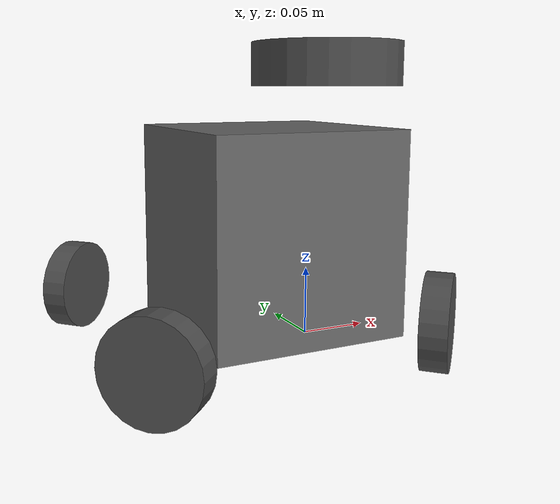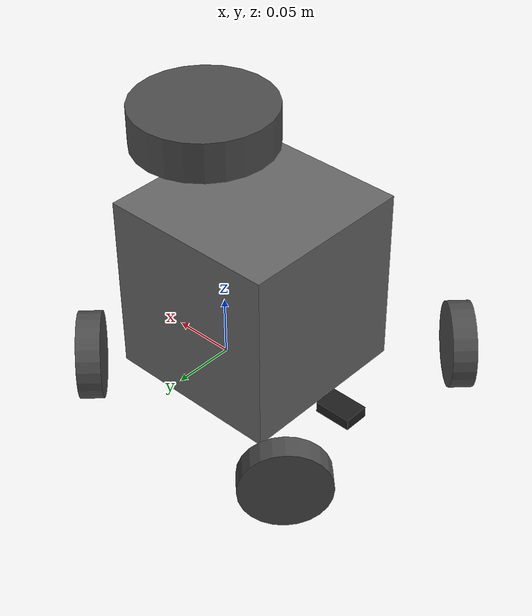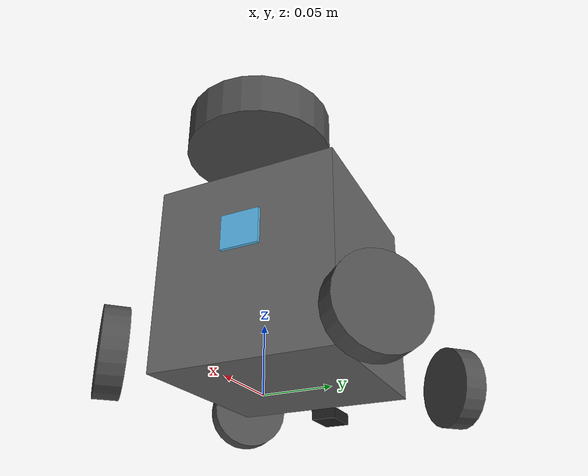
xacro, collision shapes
<?xml version="1.0" ?>
<robot name="transbot_normal" xmlns:xacro="http://ros.org/wiki/xacro">
  <xacro:include filename="$(find transbot_description)/urdf/common_properties.xacro"/>
  <xacro:include filename="$(find transbot_description)/urdf/transbot_normal.gazebo.xacro"/>

  <link name="base_footprint"/>

  <joint name="base_joint" type="fixed">
    <parent link="base_footprint"/>
    <child link="base_link"/>
    <origin xyz="0.0 0.0 0.015" rpy="0 0 0"/>
  </joint>

  <link name="base_link">
    <visual>
      <origin xyz="-0.04575 0 0.0" rpy="0 0 0"/>
      <geometry>
        <mesh filename="package://transbot_description/meshes/bases/normal_base.stl" scale="0.001 0.001 0.001"/>
      </geometry>
      <material name="light_black"/>
    </visual>

    <collision>
      <origin xyz="-0.032 0 0.070" rpy="0 0 0"/>
      <geometry>
        <box size="0.140 0.140 0.143"/>
      </geometry>
    </collision>

    <inertial>
      <origin xyz="0 0 0" rpy="0 0 0"/>
      <mass value="8.2573504e-01"/>
      <inertia ixx="2.2124416e-03" ixy="-1.2294101e-05" ixz="3.4938785e-05"
               iyy="2.1193702e-03" iyz="-5.0120904e-06"
               izz="2.0064271e-03" />
    </inertial>
  </link>

  <joint name="wheel_left_rear_joint" type="continuous">
    <parent link="base_link"/>
    <child link="wheel_left_link"/>
    <origin xyz="0.0442 0.0975 0.01625" rpy="-1.57 0 -0.785"/>
    <axis xyz="0 0 1"/>
  </joint>

  <link name="wheel_left_link">
    <visual>
      <origin xyz="0 0 0" rpy="1.57 0 0"/>
      <geometry>
        <mesh filename="package://transbot_description/meshes/wheels/onmi.stl" scale="0.001 0.001 0.001"/>
      </geometry>
      <material name="dark"/>
    </visual>

    <collision>
      <origin xyz="0 0 0" rpy="0 0 0"/>
      <geometry>
        <cylinder length="0.018" radius="0.033"/>
      </geometry>
    </collision>

    <inertial>
      <origin xyz="0 0 0" />
      <mass value="2.8498940e-02" />
      <inertia ixx="1.1175580e-05" ixy="-4.2369783e-11" ixz="-5.9381719e-09"
               iyy="1.1192413e-05" iyz="-1.4400107e-11"
               izz="2.0712558e-05" />
      </inertial>
  </link>

  <joint name="wheel_right_rear_joint" type="continuous">
    <parent link="base_link"/>
    <child link="wheel_right_link"/>
    <origin xyz="0.0442 -0.0975 0.01625" rpy="-1.57 0 0.785"/>
    <axis xyz="0 0 1"/>
  </joint>

  <link name="wheel_right_link">
    <visual>
      <origin xyz="0 0 0" rpy="1.57 0 0"/>
      <geometry>
        <mesh filename="package://transbot_description/meshes/wheels/onmi.stl" scale="0.001 0.001 0.001"/>
      </geometry>
      <material name="dark"/>
    </visual>

    <collision>
      <origin xyz="0 0 0" rpy="0 0 0"/>
      <geometry>
        <cylinder length="0.018" radius="0.033"/>
      </geometry>
    </collision>

    <inertial>
      <origin xyz="0 0 0" />
      <mass value="2.8498940e-02" />
      <inertia ixx="1.1175580e-05" ixy="-4.2369783e-11" ixz="-5.9381719e-09"
               iyy="1.1192413e-05" iyz="-1.4400107e-11"
               izz="2.0712558e-05" />
      </inertial>
  </link>

 <joint name="wheel_left_front_joint" type="continuous">
    <parent link="base_link"/>
    <child link="wheel_left_front_link"/>
    <origin xyz="-0.1505 0.0975 0.01625" rpy="-1.57 0 0.785"/>
    <axis xyz="0 0 1"/>
  </joint>

  <link name="wheel_left_front_link">
    <visual>
      <origin xyz="0 0 0" rpy="1.57 0 0"/>
      <geometry>
        <mesh filename="package://transbot_description/meshes/wheels/onmi.stl" scale="0.001 0.001 0.001"/>
      </geometry>
      <material name="dark"/>
    </visual>

    <collision>
      <origin xyz="0 0 0" rpy="0 0 0"/>
      <geometry>
        <cylinder length="0.018" radius="0.033"/>
      </geometry>
    </collision>

    <inertial>
      <origin xyz="0 0 0" />
      <mass value="2.8498940e-02" />
      <inertia ixx="1.1175580e-05" ixy="-4.2369783e-11" ixz="-5.9381719e-09"
               iyy="1.1192413e-05" iyz="-1.4400107e-11"
               izz="2.0712558e-05" />
      </inertial>
  </link>

  <joint name="wheel_right_front_joint" type="continuous">
    <parent link="base_link"/>
    <child link="wheel_right_front_link"/>
    <origin xyz="-0.1505 -0.0975 0.01625" rpy="-1.57 0 -0.785"/>
    <axis xyz="0 0 1"/>
  </joint>

  <link name="wheel_right_front_link">
    <visual>
      <origin xyz="0 0 0" rpy="1.57 0 0"/>
      <geometry>
        <mesh filename="package://transbot_description/meshes/wheels/onmi.stl" scale="0.001 0.001 0.001"/>
      </geometry>
      <material name="dark"/>
    </visual>

    <collision>
      <origin xyz="0 0 0" rpy="0 0 0"/>
      <geometry>
        <cylinder length="0.018" radius="0.033"/>
      </geometry>
    </collision>

    <inertial>
      <origin xyz="0 0 0" />
      <mass value="2.8498940e-02" />
      <inertia ixx="1.1175580e-05" ixy="-4.2369783e-11" ixz="-5.9381719e-09"
               iyy="1.1192413e-05" iyz="-1.4400107e-11"
               izz="2.0712558e-05" />
      </inertial>
  </link>

  <joint name="caster_back_joint" type="fixed">
    <parent link="base_link"/>
    <child link="caster_back_link"/>
    <origin xyz="-0.11775 0 -0.004" rpy="-1.57 0 0"/>
  </joint>

  <link name="caster_back_link">
    <collision>
      <origin xyz="0 0.001 0" rpy="0 0 0"/>
      <geometry>
        <box size="0.030 0.009 0.020"/>
      </geometry>
    </collision>

    <inertial>
      <origin xyz="0 0 0" />
      <mass value="0.05" />
      <inertia ixx="0.001" ixy="0.0" ixz="0.0"
               iyy="0.001" iyz="0.0"
               izz="0.001" />
    </inertial>
  </link>

  <joint name="imu_joint" type="fixed">
    <parent link="base_link"/>
    <child link="imu_link"/>
    <origin xyz="-0.07275 0 0.078" rpy="0 0 0"/>
  </joint>

  <link name="imu_link"/>

  <joint name="scan_joint" type="fixed">
    <parent link="base_link"/>
    <child link="base_scan"/>
    <origin xyz="0.0 0 0.192" rpy="0 0 0"/>
  </joint>

  <link name="base_scan">
    <visual>
      <origin xyz="0 0 0.0" rpy="0 0 0"/>
      <geometry>
        <mesh filename="package://transbot_description/meshes/sensors/yd-x2l.stl" scale="0.001 0.001 0.001"/>
      </geometry>
      <material name="dark"/>
    </visual>

    <collision>
      <origin xyz="0.015 0 -0.0065" rpy="0 0 0"/>
      <geometry>
        <cylinder length="0.0315" radius="0.055"/>
      </geometry>
    </collision>

    <inertial>
      <mass value="0.114" />
      <origin xyz="0 0 0" />
      <inertia ixx="0.001" ixy="0.0" ixz="0.0"
               iyy="0.001" iyz="0.0"
               izz="0.001" />
    </inertial>
  </link>

 <joint name="camera_joint" type="fixed">
    <origin xyz="0.0332 0.0 0.0934" rpy="0 0 0"/>
    <parent link="base_link"/>
    <child link="camera_link"/>
  </joint>

  <link name="camera_link">
    <collision>
      <origin xyz="0.0 0.0 0.0" rpy="0 0 0"/>
      <geometry>
        <box size="0.015 0.030 0.027"/>
      </geometry>
    </collision>
  </link>

  <joint name="camera_rgb_joint" type="fixed">
    <origin xyz="0.0 0.0 0.0" rpy="0 0 0"/>
    <parent link="camera_link"/>
    <child link="camera_rgb_frame"/>
  </joint>
  <link name="camera_rgb_frame"/>

  <joint name="camera_rgb_optical_joint" type="fixed">
    <origin xyz="0 0 0" rpy="-1.57 0 -1.57"/>
    <parent link="camera_rgb_frame"/>
    <child link="camera_rgb_optical_frame"/>
  </joint>
  <link name="camera_rgb_optical_frame"/>

</robot>

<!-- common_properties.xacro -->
<robot name="xacro_properties" xmlns:xacro="http://ros.org/wiki/xacro">

  <!-- Init colour -->
  <material name="black">
      <color rgba="0.0 0.0 0.0 1.0"/>
  </material>

  <material name="dark">
    <color rgba="0.3 0.3 0.3 1.0"/>
  </material>
  <material name="light_black">
    <color rgba="0.4 0.4 0.4 1.0"/>
  </material>

  <material name="blue">
    <color rgba="0.0 0.0 0.8 1.0"/>
  </material>

  <material name="green">
    <color rgba="0.0 0.8 0.0 1.0"/>
  </material>

  <material name="grey">
    <color rgba="0.5 0.5 0.5 1.0"/>
  </material>

  <material name="orange">
    <color rgba="${255/255} ${108/255} ${10/255} 1.0"/>
  </material>

  <material name="brown">
    <color rgba="${222/255} ${207/255} ${195/255} 1.0"/>
  </material>

  <material name="red">
    <color rgba="0.8 0.0 0.0 1.0"/>
  </material>

  <material name="white">
    <color rgba="1.0 1.0 1.0 1.0"/>
  </material>
</robot>
